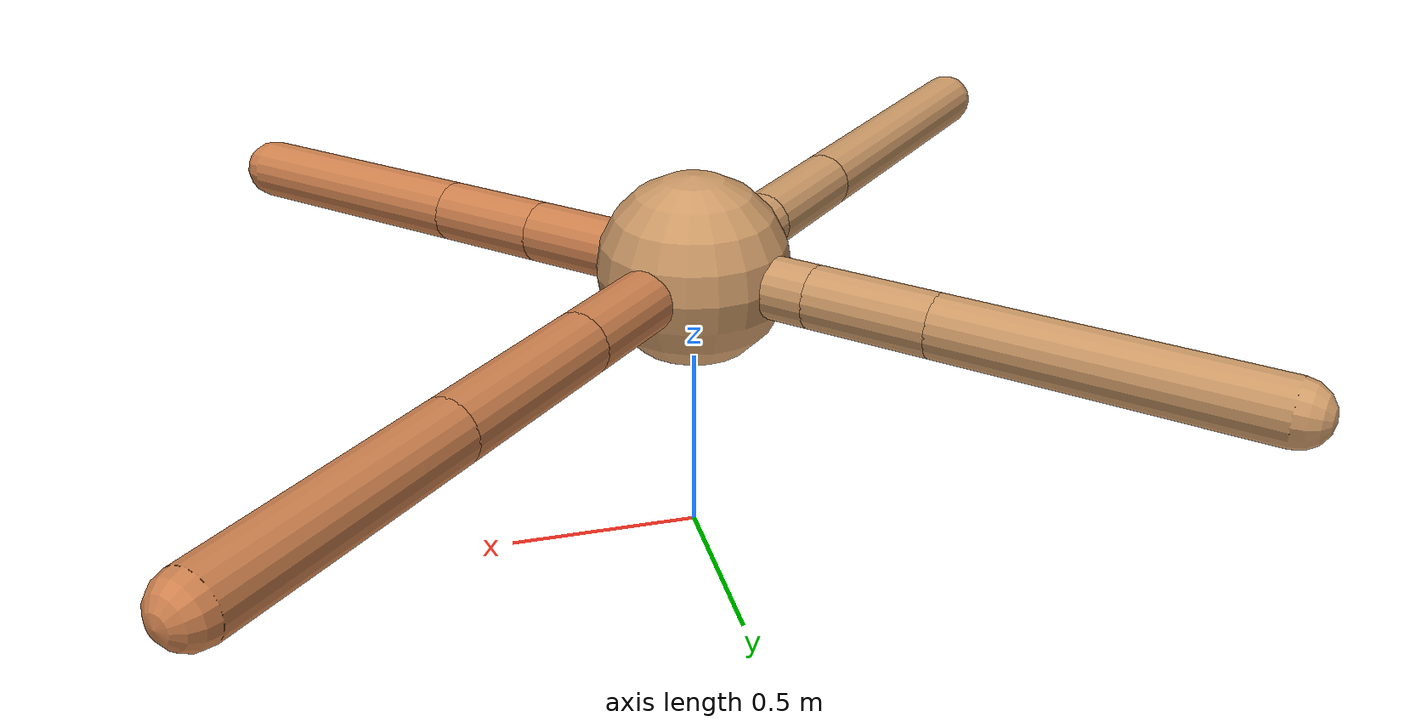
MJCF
<mujoco model="ant">
  <compiler angle="degree" coordinate="local" inertiafromgeom="true" />
  <option integrator="RK4" timestep="0.01" />
  <custom>
    <numeric data="0.0 0.0 0.55 1.0 0.0 0.0 0.0 0.0 1.0 0.0 -1.0 0.0 -1.0 0.0 1.0" name="init_qpos" />
  </custom>
  <default>
    <joint armature="1" damping="1" limited="true" />
    <geom conaffinity="0" condim="3" density="5.0" friction="1.5 0.1 0.1" margin="0.01" rgba="0.8 0.6 0.4 1" />
  </default>
  <worldbody>
    <body name="torso" pos="0 0 0.75">
      <geom name="torso_geom" pos="0 0 0" size="0.25" type="sphere" />

      <body name="front_left_leg" pos="0 0 0">
        <geom fromto="0.0 0.0 0.0 0.3567927694007033 0.3567927694007033 0.0" name="aux_1_geom" size="0.08" type="capsule" rgba=".8 .5 .3 1" />
        <body name="aux_1" pos="0.3567927694007033 0.3567927694007033 0.0">
          <joint axis="0 0 1" name="hip_1" pos="0.0 0.0 0.0" range="-40 40" type="hinge" />
          <geom fromto="0.0 0.0 0.0 0.3313666299996299 0.3313666299996299 0.0" name="left_leg_geom" size="0.08" type="capsule" rgba=".8 .5 .3 1" />
          <body pos="0.3313666299996299 0.3313666299996299 0.0" name="front_left_foot">
            <joint axis="-1 1 0" name="ankle_1" pos="0.0 0.0 0.0" range="30 100" type="hinge" />
            <geom fromto="0.0 0.0 0.0 0.48931473600898434 0.48931473600898434 0.0" name="left_ankle_geom" size="0.08" type="capsule" rgba=".8 .5 .3 1" />
          </body>
        </body>
      </body>
      <body name="front_right_leg" pos="0 0 0">
        <geom fromto="0.0 0.0 0.0 -0.2416135095334719 0.2416135095334719 0.0" name="aux_2_geom" size="0.08" type="capsule" />
        <body name="aux_2" pos="-0.2416135095334719 0.2416135095334719 0.0">
          <joint axis="0 0 1" name="hip_2" pos="0.0 0.0 0.0" range="-40 40" type="hinge" />
          <geom fromto="0.0 0.0 0.0 -0.22469337944348836 0.22469337944348836 0.0" name="right_leg_geom" size="0.08" type="capsule" />
          <body pos="-0.22469337944348836 0.22469337944348836 0.0" name="front_right_foot">
            <joint axis="1 1 0" name="ankle_2" pos="0.0 0.0 0.0" range="-100 -30" type="hinge" />
            <geom fromto="0.0 0.0 0.0 -0.5783316813902615 0.5783316813902615 0.0" name="right_ankle_geom" size="0.08" type="capsule" />
          </body>
        </body>
      </body>
      <body name="left_back_leg" pos="0 0 0">
        <geom fromto="0.0 0.0 0.0 -0.26181941067203246 -0.26181941067203246 0.0" name="aux_3_geom" size="0.08" type="capsule" />
        <body name="aux_3" pos="-0.26181941067203246 -0.26181941067203246 0.0">
          <joint axis="0 0 1" name="hip_3" pos="0.0 0.0 0.0" range="-40 40" type="hinge" />
          <geom fromto="0.0 0.0 0.0 -0.25746821307468815 -0.25746821307468815 0.0" name="back_leg_geom" size="0.08" type="capsule" />
          <body pos="-0.25746821307468815 -0.25746821307468815 0.0" name="left_back_foot">
            <joint axis="-1 1 0" name="ankle_3" pos="0.0 0.0 0.0" range="-100 -30" type="hinge" />
            <geom fromto="0.0 0.0 0.0 -0.6498279948714589 -0.6498279948714589 0.0" name="third_ankle_geom" size="0.08" type="capsule" />
          </body>
        </body>
      </body>
      <body name="right_back_leg" pos="0 0 0">
        <geom fromto="0.0 0.0 0.0 0.3403434782750401 -0.3403434782750401 0.0" name="aux_4_geom" size="0.08" type="capsule" rgba=".8 .5 .3 1" />
        <body name="aux_4" pos="0.3403434782750401 -0.3403434782750401 0.0">
          <joint axis="0 0 1" name="hip_4" pos="0.0 0.0 0.0" range="-40 40" type="hinge" />
          <geom fromto="0.0 0.0 0.0 0.20889714686819266 -0.20889714686819266 0.0" name="rightback_leg_geom" size="0.08" type="capsule" rgba=".8 .5 .3 1" />
          <body pos="0.20889714686819266 -0.20889714686819266 0.0" name="right_back_foot">
            <joint axis="1 1 0" name="ankle_4" pos="0.0 0.0 0.0" range="30 100" type="hinge" />
            <geom fromto="0.0 0.0 0.0 0.4774449488045722 -0.4774449488045722 0.0" name="fourth_ankle_geom" size="0.08" type="capsule" rgba=".8 .5 .3 1" />
          </body>
        </body>
      </body>
    </body>
  </worldbody>
  <actuator>
    <motor ctrllimited="true" ctrlrange="-1.0 1.0" joint="hip_4" gear="150" />
    <motor ctrllimited="true" ctrlrange="-1.0 1.0" joint="ankle_4" gear="150" />
    <motor ctrllimited="true" ctrlrange="-1.0 1.0" joint="hip_1" gear="150" />
    <motor ctrllimited="true" ctrlrange="-1.0 1.0" joint="ankle_1" gear="150" />
    <motor ctrllimited="true" ctrlrange="-1.0 1.0" joint="hip_2" gear="150" />
    <motor ctrllimited="true" ctrlrange="-1.0 1.0" joint="ankle_2" gear="150" />
    <motor ctrllimited="true" ctrlrange="-1.0 1.0" joint="hip_3" gear="150" />
    <motor ctrllimited="true" ctrlrange="-1.0 1.0" joint="ankle_3" gear="150" />
  </actuator>
</mujoco>
